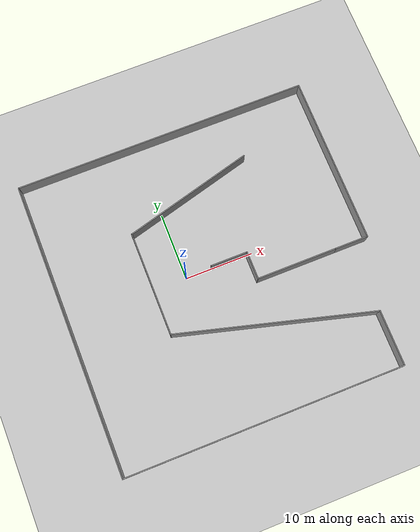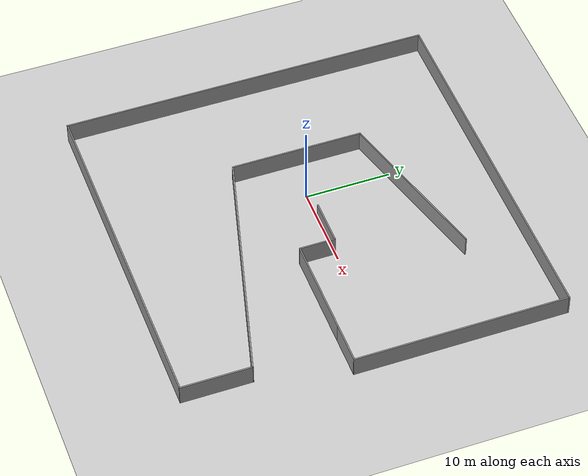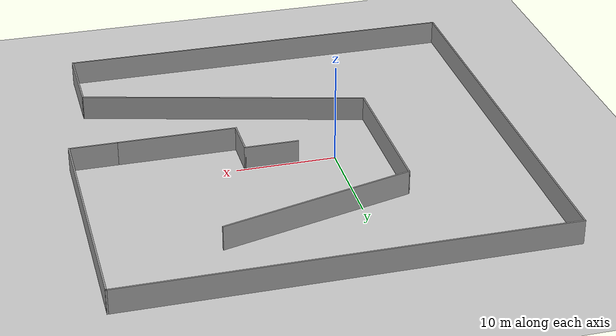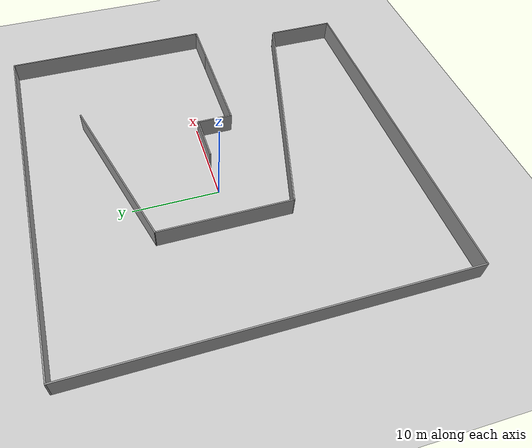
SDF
<sdf version="1.7">
 <world name="default">
  <light name="sun" type="directional">
   <pose>0 0 10 0 -0 0</pose>
   <diffuse>0.8 0.8 0.8 1</diffuse>
   <specular>0.2 0.2 0.2 1</specular>
   <attenuation>
    <range>1000</range>
    <constant>0.9</constant>
    <linear>0.01</linear>
    <quadratic>0.001</quadratic>
   </attenuation>
   <direction>-0.5 0.1 -0.9</direction>
   <spot><inner_angle>0</inner_angle><outer_angle>0</outer_angle><falloff>0</falloff></spot>
  </light>
  <model name="ground_plane">
   <static>1</static>
   <link name="link">
    <collision name="collision">
     <geometry><plane><normal>0 0 1</normal><size>100 100</size></plane></geometry>
     <surface><friction><ode><mu>100</mu><mu2>50</mu2></ode></friction></surface>
    </collision>
    <visual name="visual">
     <cast_shadows>0</cast_shadows>
     <geometry><plane><normal>0 0 1</normal><size>100 100</size></plane></geometry>
     <material>
      <script><uri>file://media/materials/scripts/gazebo.material</uri><name>Gazebo/Grey</name></script>
     </material>
    </visual>
   </link>
  </model>
  <gravity>0 0 -9.8</gravity>
  <magnetic_field>6e-06 2.3e-05 -4.2e-05</magnetic_field>
  <atmosphere type="adiabatic"/>
  <physics type="ode">
   <max_step_size>0.001</max_step_size>
   <real_time_factor>1</real_time_factor>
   <real_time_update_rate>1000</real_time_update_rate>
  </physics>
  <scene><ambient>0.4 0.4 0.4 1</ambient><background>0.7 0.7 0.7 1</background><shadows>1</shadows></scene>
  <audio><device>default</device></audio>
  <spherical_coordinates>
   <surface_model>EARTH_WGS84</surface_model>
   <latitude_deg>0</latitude_deg>
   <longitude_deg>0</longitude_deg>
   <elevation>0</elevation>
   <heading_deg>0</heading_deg>
  </spherical_coordinates>
  <model name="wall_1">
   <pose>4.05711 -0.968022 0 0 -0 0</pose>
   <link name="Wall_0">
    <collision name="Wall_0_Collision">
     <geometry><box><size>5.5 0.15 2.5</size></box></geometry>
     <pose>0 0 1.25 0 -0 0</pose>
    </collision>
    <visual name="Wall_0_Visual">
     <pose>0 0 1.25 0 -0 0</pose>
     <geometry><box><size>5.5 0.15 2.5</size></box></geometry>
     <material>
      <script><uri>file://media/materials/scripts/gazebo.material</uri><name>Gazebo/Grey</name></script>
      <ambient>1 1 1 1</ambient>
     </material>
     <meta><layer>0</layer></meta>
    </visual>
    <pose>2.425 0.925 0 0 -0 0</pose>
   </link>
   <link name="Wall_1">
    <collision name="Wall_1_Collision">
     <geometry><box><size>4.25 0.15 2.5</size></box></geometry>
     <pose>0 0 1.25 0 -0 0</pose>
    </collision>
    <visual name="Wall_1_Visual">
     <pose>0 0 1.25 0 -0 0</pose>
     <geometry><box><size>4.25 0.15 2.5</size></box></geometry>
     <material>
      <script><uri>file://media/materials/scripts/gazebo.material</uri><name>Gazebo/Grey</name></script>
      <ambient>1 1 1 1</ambient>
     </material>
     <meta><layer>0</layer></meta>
    </visual>
    <pose>5.1 -1.125 0 0 -0 -1.5708</pose>
   </link>
   <link name="Wall_10">
    <collision name="Wall_10_Collision">
     <geometry><box><size>15.5 0.15 2.5</size></box></geometry>
     <pose>0 0 1.25 0 -0 0</pose>
    </collision>
    <visual name="Wall_10_Visual">
     <pose>0 0 1.25 0 -0 0</pose>
     <geometry><box><size>15.5 0.15 2.5</size></box></geometry>
     <material>
      <script><uri>file://media/materials/scripts/gazebo.material</uri><name>Gazebo/Grey</name></script>
      <ambient>1 1 1 1</ambient>
     </material>
     <meta><layer>0</layer></meta>
    </visual>
    <pose>-9.05844 1.63163 0 0 -0 1.5708</pose>
   </link>
   <link name="Wall_11">
    <collision name="Wall_11_Collision">
     <geometry><box><size>20 0.15 2.5</size></box></geometry>
     <pose>0 0 1.25 0 -0 0</pose>
    </collision>
    <visual name="Wall_11_Visual">
     <pose>0 0 1.25 0 -0 0</pose>
     <geometry><box><size>20 0.15 2.5</size></box></geometry>
     <material>
      <script><uri>file://media/materials/scripts/gazebo.material</uri><name>Gazebo/Grey</name></script>
      <ambient>1 1 1 1</ambient>
     </material>
     <meta><layer>0</layer></meta>
    </visual>
    <pose>0.528374 11.8754 0 0 -0 0.261799</pose>
   </link>
   <link name="Wall_2">
    <collision name="Wall_2_Collision">
     <geometry><box><size>12 0.15 2.5</size></box></geometry>
     <pose>0 0 1.25 0 -0 0</pose>
    </collision>
    <visual name="Wall_2_Visual">
     <pose>0 0 1.25 0 -0 0</pose>
     <geometry><box><size>12 0.15 2.5</size></box></geometry>
     <material>
      <script><uri>file://media/materials/scripts/gazebo.material</uri><name>Gazebo/Grey</name></script>
      <ambient>1 1 1 1</ambient>
     </material>
     <meta><layer>0</layer></meta>
    </visual>
    <pose>11.025 -3.175 0 0 -0 0</pose>
   </link>
   <link name="Wall_3">
    <collision name="Wall_3_Collision">
     <geometry><box><size>5 0.15 2.5</size></box></geometry>
     <pose>0 0 1.25 0 -0 0</pose>
    </collision>
    <visual name="Wall_3_Visual">
     <pose>0 0 1.25 0 -0 0</pose>
     <geometry><box><size>5 0.15 2.5</size></box></geometry>
     <material>
      <script><uri>file://media/materials/scripts/gazebo.material</uri><name>Gazebo/Grey</name></script>
      <ambient>1 1 1 1</ambient>
     </material>
     <meta><layer>0</layer></meta>
    </visual>
    <pose>19.375 -3.175 0 0 -0 0</pose>
   </link>
   <link name="Wall_4">
    <collision name="Wall_4_Collision">
     <geometry><box><size>25 0.15 2.5</size></box></geometry>
     <pose>0 0 1.25 0 -0 0</pose>
    </collision>
    <visual name="Wall_4_Visual">
     <pose>0 0 1.25 0 -0 0</pose>
     <geometry><box><size>25 0.15 2.5</size></box></geometry>
     <material>
      <script><uri>file://media/materials/scripts/gazebo.material</uri><name>Gazebo/Grey</name></script>
      <ambient>1 1 1 1</ambient>
     </material>
     <meta><layer>0</layer></meta>
    </visual>
    <pose>21.8 9.25 0 0 -0 1.5708</pose>
   </link>
   <link name="Wall_5">
    <collision name="Wall_5_Collision">
     <geometry><box><size>43.75 0.15 2.5</size></box></geometry>
     <pose>0 0 1.25 0 -0 0</pose>
    </collision>
    <visual name="Wall_5_Visual">
     <pose>0 0 1.25 0 -0 0</pose>
     <geometry><box><size>43.75 0.15 2.5</size></box></geometry>
     <material>
      <script><uri>file://media/materials/scripts/gazebo.material</uri><name>Gazebo/Grey</name></script>
      <ambient>1 1 1 1</ambient>
     </material>
     <meta><layer>0</layer></meta>
    </visual>
    <pose>1e-06 21.675 0 0 -0 3.14159</pose>
   </link>
   <link name="Wall_6">
    <collision name="Wall_6_Collision">
     <geometry><box><size>43.5 0.15 2.5</size></box></geometry>
     <pose>0 0 1.25 0 -0 0</pose>
    </collision>
    <visual name="Wall_6_Visual">
     <pose>0 0 1.25 0 -0 0</pose>
     <geometry><box><size>43.5 0.15 2.5</size></box></geometry>
     <material>
      <script><uri>file://media/materials/scripts/gazebo.material</uri><name>Gazebo/Grey</name></script>
      <ambient>1 1 1 1</ambient>
     </material>
     <meta><layer>0</layer></meta>
    </visual>
    <pose>-21.8 0 0 0 -0 -1.5708</pose>
   </link>
   <link name="Wall_7">
    <collision name="Wall_7_Collision">
     <geometry><box><size>41 0.15 2.5</size></box></geometry>
     <pose>0 0 1.25 0 -0 0</pose>
    </collision>
    <visual name="Wall_7_Visual">
     <pose>0 0 1.25 0 -0 0</pose>
     <geometry><box><size>41 0.15 2.5</size></box></geometry>
     <material>
      <script><uri>file://media/materials/scripts/gazebo.material</uri><name>Gazebo/Grey</name></script>
      <ambient>1 1 1 1</ambient>
     </material>
     <meta><layer>0</layer></meta>
    </visual>
    <pose>-1.375 -21.675 0 0 -0 0</pose>
   </link>
   <link name="Wall_8">
    <collision name="Wall_8_Collision">
     <geometry><box><size>8.25 0.15 2.5</size></box></geometry>
     <pose>0 0 1.25 0 -0 0</pose>
    </collision>
    <visual name="Wall_8_Visual">
     <pose>0 0 1.25 0 -0 0</pose>
     <geometry><box><size>8.25 0.15 2.5</size></box></geometry>
     <material>
      <script><uri>file://media/materials/scripts/gazebo.material</uri><name>Gazebo/Grey</name></script>
      <ambient>1 1 1 1</ambient>
     </material>
     <meta><layer>0</layer></meta>
    </visual>
    <pose>19.05 -17.625 0 0 -0 1.5708</pose>
   </link>
   <link name="Wall_9">
    <collision name="Wall_9_Collision">
     <geometry><box><size>29.25 0.15 2.5</size></box></geometry>
     <pose>0 0 1.25 0 -0 0</pose>
    </collision>
    <visual name="Wall_9_Visual">
     <pose>0 0 1.25 0 -0 0</pose>
     <geometry><box><size>29.25 0.15 2.5</size></box></geometry>
     <material>
      <script><uri>file://media/materials/scripts/gazebo.material</uri><name>Gazebo/Grey</name></script>
      <ambient>1 1 1 1</ambient>
     </material>
     <meta><layer>0</layer></meta>
    </visual>
    <pose>4.99578 -9.80918 0 0 -0 2.87979</pose>
   </link>
   <static>1</static>
  </model>
 </world>
</sdf>
